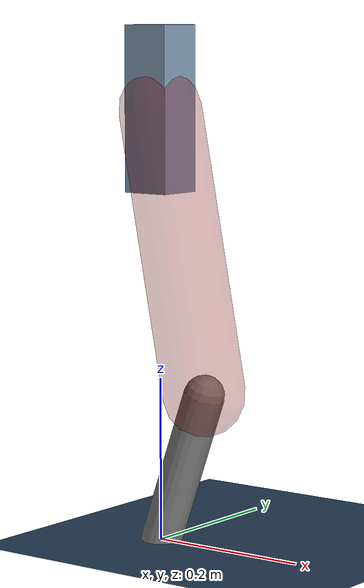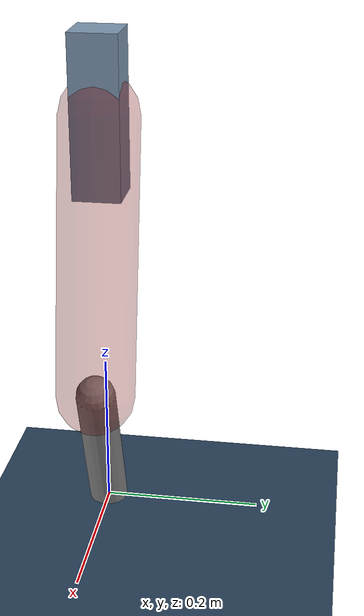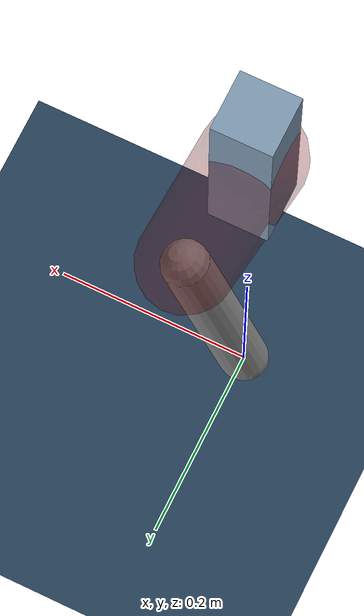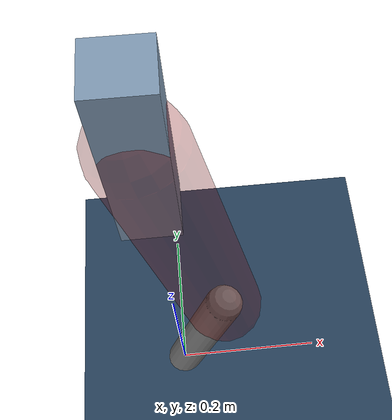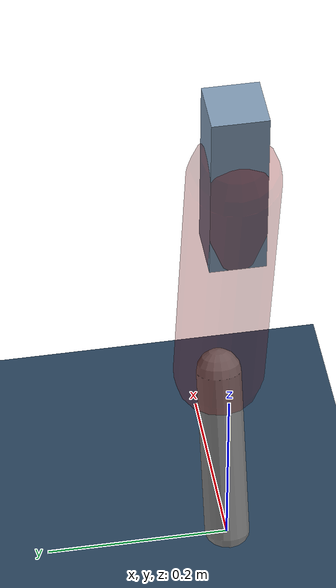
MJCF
<mujoco model="Hopper2D">
	<compiler inertiafromgeom="true" angle="radian" />
	<option timestep="0.001" integrator="implicit" cone="elliptic" solver="Newton" tolerance="1e-10" />

	<default>
		<geom contype="1" conaffinity="1" condim="3" friction="2 0.005 0.0001" solref="0.005 1" />
		<joint limited="true" damping="0.1" />
	</default>

	<asset>
		<texture name="skybox" type="skybox" builtin="gradient" rgb1=".4 .6 .8" rgb2="0 0 0" width="800" height="800" />
		<texture name="grid" type="2d" builtin="checker" rgb1=".1 .2 .3" rgb2=".2 .3 .4" width="300" height="300" mark="edge" markrgb=".2 .3 .4" />
		<material name="ground" texture="grid" texrepeat="1 1" texuniform="true" reflectance="0.1" />
		<material name="leg" rgba="0.5 0.6 0.7 1" />
	</asset>

	<worldbody>

		<geom name="floor" type="plane" size="5 5 0.25" material="ground" />

		<light directional="false" diffuse="0.8 0.8 0.8" specular="0.3 0.3 0.3" pos="0 0 2" dir="0 0 -1" />
		<light mode="targetbodycom" target="base" directional="false" diffuse="0.8 0.8 0.8" specular="0.3 0.3 0.3" pos="0 0 2" dir="0 0 -1" />

		<camera name="fixed" pos="0 -2 1" xyaxes="1 0 0 0 0 1" />
		<camera name="tracking" mode="trackcom" pos="0 -3 1" />

		<body name="root" pos="0 0 0.5278390753828374">
			<joint name="slide_x" type="slide" axis="1 0 0" range="-100 100" />
			<joint name="slide_z" type="slide" axis="0 0 1" range="0 10" />

			<body name="base" pos="0 0 0">
				<geom name="torso" type="box" size="0.03 0.03 0.1" mass="3.0789999999999997" material="leg" />

				<body name="link1" pos="0 0 0" euler="0 1.3803960391180197 0">
					<joint type="hinge" axis="0 -1 0" pos="0 0 0" name="hinge1" limited="true" range="-3.14 3.14" stiffness="0" damping="0.1" />
					<geom name="thigh" type="capsule" fromto="0 0 0 0.3480445662666874 0 0" size="0.05" rgba="0.5 0 0 0.3" mass="1.1212247855467248" />

					<body name="link2" pos="0.3480445662666874 0 0" euler="0 0.5306069997039307 0">
						<joint type="hinge" axis="0 -1 0" pos="0 0 0" name="hinge2" limited="true" range="-3.14 3.14" stiffness="0" damping="0.1" />
						<geom name="shank" type="capsule" fromto="0 0 0 0.19739789647909958 0 0" size="0.025" mass="0.39871831718327966" />

					</body>
				</body>
			</body>
		</body>
	</worldbody>

	<actuator>
		<motor name="torque1" joint="hinge1" ctrlrange="-130.35892239568778 130.35892239568778" ctrllimited="true" gear="1" />
		<motor name="torque2" joint="hinge2" ctrlrange="-53.689188022705515 53.689188022705515" ctrllimited="true" gear="1" />
	</actuator>
</mujoco>
